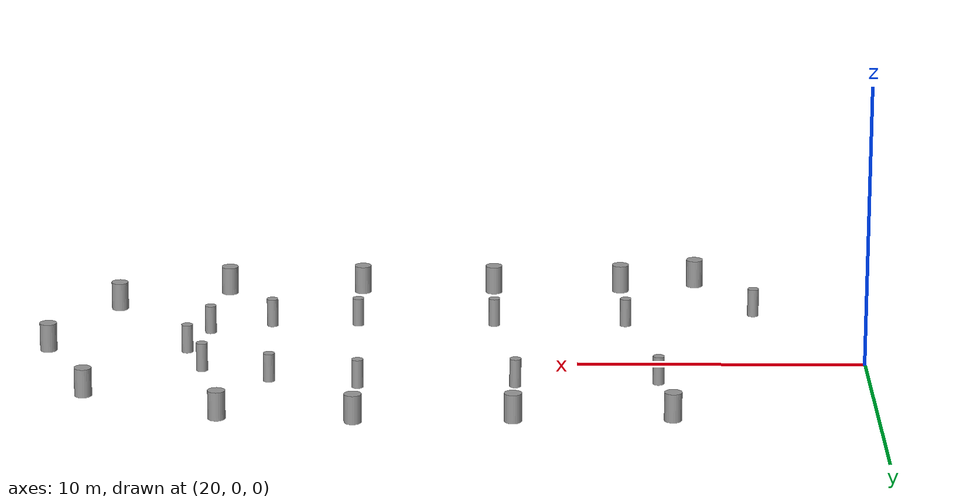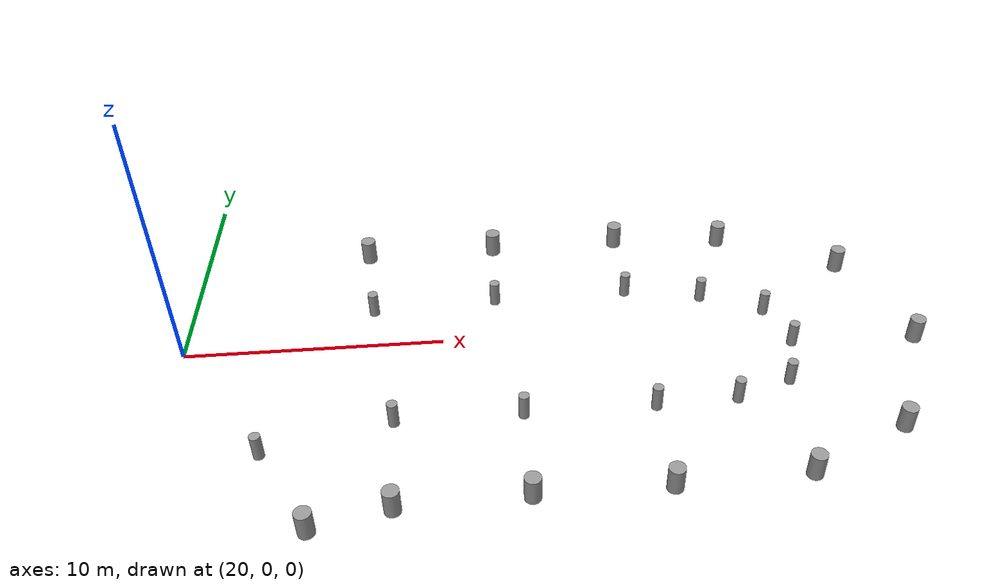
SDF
<sdf version="1.6">
 <world name="default">
  <model name="cylinder_right_clone_0">
   <link name="link_0">
    <inertial>
     <mass>1</mass>
     <inertia><ixx>0.145833</ixx><ixy>0</ixy><ixz>0</ixz><iyy>0.145833</iyy><iyz>0</iyz><izz>0.125</izz></inertia>
    </inertial>
    <visual name="visual">
     <geometry><cylinder><radius>0.2</radius><length>1</length></cylinder></geometry>
     <material>
      <lighting>1</lighting>
      <script><uri>file://media/materials/scripts/gazebo.material</uri><name>Gazebo/Grey</name></script>
      <ambient>0.3 0.3 0.3 1</ambient>
      <diffuse>0.7 0.7 0.7 1</diffuse>
      <specular>0.01 0.01 0.01 1</specular>
      <emissive>0 0 0 1</emissive>
      <shader type="vertex"><normal_map>__default__</normal_map></shader>
     </material>
    </visual>
    <collision name="collision">
     <geometry><cylinder><radius>0.2</radius><length>1</length></cylinder></geometry>
     <surface>
      <friction>
       <ode><mu>1</mu><mu2>1</mu2><fdir1>0 0 0</fdir1><slip1>0</slip1><slip2>0</slip2></ode>
       <torsional>
        <coefficient>1</coefficient>
        <patch_radius>0</patch_radius>
        <surface_radius>0</surface_radius>
        <use_patch_radius>1</use_patch_radius>
        <ode><slip>0</slip></ode>
       </torsional>
      </friction>
      <bounce><restitution_coefficient>0</restitution_coefficient><threshold>1e+06</threshold></bounce>
      <contact>
       <collide_without_contact>0</collide_without_contact>
       <collide_without_contact_bitmask>1</collide_without_contact_bitmask>
       <collide_bitmask>1</collide_bitmask>
       <ode>
        <soft_cfm>0</soft_cfm>
        <soft_erp>0.2</soft_erp>
        <kp>1e+13</kp>
        <kd>1</kd>
        <max_vel>0.01</max_vel>
        <min_depth>0</min_depth>
       </ode>
       <bullet>
        <split_impulse>1</split_impulse>
        <split_impulse_penetration_threshold>-0.01</split_impulse_penetration_threshold>
        <soft_cfm>0</soft_cfm>
        <soft_erp>0.2</soft_erp>
        <kp>1e+13</kp>
        <kd>1</kd>
       </bullet>
      </contact>
     </surface>
    </collision>
   </link>
   <static>0</static>
   <pose>27.2508 1.99321 0.49912 0 -0 0.000407</pose>
  </model>
  <model name="cylinder_left_clone_2">
   <link name="link_1">
    <inertial>
     <mass>1</mass>
     <inertia><ixx>0.145833</ixx><ixy>0</ixy><ixz>0</ixz><iyy>0.145833</iyy><iyz>0</iyz><izz>0.125</izz></inertia>
    </inertial>
    <visual name="visual">
     <geometry><cylinder><radius>0.3</radius><length>1</length></cylinder></geometry>
     <material>
      <lighting>1</lighting>
      <script><uri>file://media/materials/scripts/gazebo.material</uri><name>Gazebo/Grey</name></script>
      <ambient>0.3 0.3 0.3 1</ambient>
      <diffuse>0.7 0.7 0.7 1</diffuse>
      <specular>0.01 0.01 0.01 1</specular>
      <emissive>0 0 0 1</emissive>
      <shader type="vertex"><normal_map>__default__</normal_map></shader>
     </material>
    </visual>
    <collision name="collision">
     <geometry><cylinder><radius>0.3</radius><length>1</length></cylinder></geometry>
     <surface>
      <friction>
       <ode><mu>1</mu><mu2>1</mu2><fdir1>0 0 0</fdir1><slip1>0</slip1><slip2>0</slip2></ode>
       <torsional>
        <coefficient>1</coefficient>
        <patch_radius>0</patch_radius>
        <surface_radius>0</surface_radius>
        <use_patch_radius>1</use_patch_radius>
        <ode><slip>0</slip></ode>
       </torsional>
      </friction>
      <bounce><restitution_coefficient>0</restitution_coefficient><threshold>1e+06</threshold></bounce>
      <contact>
       <collide_without_contact>0</collide_without_contact>
       <collide_without_contact_bitmask>1</collide_without_contact_bitmask>
       <collide_bitmask>1</collide_bitmask>
       <ode>
        <soft_cfm>0</soft_cfm>
        <soft_erp>0.2</soft_erp>
        <kp>1e+13</kp>
        <kd>1</kd>
        <max_vel>0.01</max_vel>
        <min_depth>0</min_depth>
       </ode>
       <bullet>
        <split_impulse>1</split_impulse>
        <split_impulse_penetration_threshold>-0.01</split_impulse_penetration_threshold>
        <soft_cfm>0</soft_cfm>
        <soft_erp>0.2</soft_erp>
        <kp>1e+13</kp>
        <kd>1</kd>
       </bullet>
      </contact>
     </surface>
    </collision>
   </link>
   <static>0</static>
   <pose>32.2673 5.86285 0.49912 0 -0 0</pose>
  </model>
  <model name="cylinder_right_clone_7">
   <link name="link_0">
    <inertial>
     <mass>1</mass>
     <inertia><ixx>0.145833</ixx><ixy>0</ixy><ixz>0</ixz><iyy>0.145833</iyy><iyz>0</iyz><izz>0.125</izz></inertia>
    </inertial>
    <visual name="visual">
     <geometry><cylinder><radius>0.2</radius><length>1</length></cylinder></geometry>
     <material>
      <lighting>1</lighting>
      <script><uri>file://media/materials/scripts/gazebo.material</uri><name>Gazebo/Grey</name></script>
      <ambient>0.3 0.3 0.3 1</ambient>
      <diffuse>0.7 0.7 0.7 1</diffuse>
      <specular>0.01 0.01 0.01 1</specular>
      <emissive>0 0 0 1</emissive>
      <shader type="vertex"><normal_map>__default__</normal_map></shader>
     </material>
    </visual>
    <collision name="collision">
     <geometry><cylinder><radius>0.2</radius><length>1</length></cylinder></geometry>
     <surface>
      <friction>
       <ode><mu>1</mu><mu2>1</mu2><fdir1>0 0 0</fdir1><slip1>0</slip1><slip2>0</slip2></ode>
       <torsional>
        <coefficient>1</coefficient>
        <patch_radius>0</patch_radius>
        <surface_radius>0</surface_radius>
        <use_patch_radius>1</use_patch_radius>
        <ode><slip>0</slip></ode>
       </torsional>
      </friction>
      <bounce><restitution_coefficient>0</restitution_coefficient><threshold>1e+06</threshold></bounce>
      <contact>
       <collide_without_contact>0</collide_without_contact>
       <collide_without_contact_bitmask>1</collide_without_contact_bitmask>
       <collide_bitmask>1</collide_bitmask>
       <ode>
        <soft_cfm>0</soft_cfm>
        <soft_erp>0.2</soft_erp>
        <kp>1e+13</kp>
        <kd>1</kd>
        <max_vel>0.01</max_vel>
        <min_depth>0</min_depth>
       </ode>
       <bullet>
        <split_impulse>1</split_impulse>
        <split_impulse_penetration_threshold>-0.01</split_impulse_penetration_threshold>
        <soft_cfm>0</soft_cfm>
        <soft_erp>0.2</soft_erp>
        <kp>1e+13</kp>
        <kd>1</kd>
       </bullet>
      </contact>
     </surface>
    </collision>
   </link>
   <static>0</static>
   <pose>37.57 2.39361 0.49912 0 -0 0.000406</pose>
  </model>
  <model name="cylinder_right_clone_11">
   <link name="link_0">
    <inertial>
     <mass>1</mass>
     <inertia><ixx>0.145833</ixx><ixy>0</ixy><ixz>0</ixz><iyy>0.145833</iyy><iyz>0</iyz><izz>0.125</izz></inertia>
    </inertial>
    <visual name="visual">
     <geometry><cylinder><radius>0.2</radius><length>1</length></cylinder></geometry>
     <material>
      <lighting>1</lighting>
      <script><uri>file://media/materials/scripts/gazebo.material</uri><name>Gazebo/Grey</name></script>
      <ambient>0.3 0.3 0.3 1</ambient>
      <diffuse>0.7 0.7 0.7 1</diffuse>
      <specular>0.01 0.01 0.01 1</specular>
      <emissive>0 0 0 1</emissive>
      <shader type="vertex"><normal_map>__default__</normal_map></shader>
     </material>
    </visual>
    <collision name="collision">
     <geometry><cylinder><radius>0.2</radius><length>1</length></cylinder></geometry>
     <surface>
      <friction>
       <ode><mu>1</mu><mu2>1</mu2><fdir1>0 0 0</fdir1><slip1>0</slip1><slip2>0</slip2></ode>
       <torsional>
        <coefficient>1</coefficient>
        <patch_radius>0</patch_radius>
        <surface_radius>0</surface_radius>
        <use_patch_radius>1</use_patch_radius>
        <ode><slip>0</slip></ode>
       </torsional>
      </friction>
      <bounce><restitution_coefficient>0</restitution_coefficient><threshold>1e+06</threshold></bounce>
      <contact>
       <collide_without_contact>0</collide_without_contact>
       <collide_without_contact_bitmask>1</collide_without_contact_bitmask>
       <collide_bitmask>1</collide_bitmask>
       <ode>
        <soft_cfm>0</soft_cfm>
        <soft_erp>0.2</soft_erp>
        <kp>1e+13</kp>
        <kd>1</kd>
        <max_vel>0.01</max_vel>
        <min_depth>0</min_depth>
       </ode>
       <bullet>
        <split_impulse>1</split_impulse>
        <split_impulse_penetration_threshold>-0.01</split_impulse_penetration_threshold>
        <soft_cfm>0</soft_cfm>
        <soft_erp>0.2</soft_erp>
        <kp>1e+13</kp>
        <kd>1</kd>
       </bullet>
      </contact>
     </surface>
    </collision>
   </link>
   <static>0</static>
   <pose>32.1657 2.28849 0.49912 0 -0 0.000408</pose>
  </model>
  <model name="cylinder_left_clone_2_clone_clone_0">
   <link name="link_1">
    <inertial>
     <mass>1</mass>
     <inertia><ixx>0.145833</ixx><ixy>0</ixy><ixz>0</ixz><iyy>0.145833</iyy><iyz>0</iyz><izz>0.125</izz></inertia>
    </inertial>
    <visual name="visual">
     <geometry><cylinder><radius>0.3</radius><length>1</length></cylinder></geometry>
     <material>
      <lighting>1</lighting>
      <script><uri>file://media/materials/scripts/gazebo.material</uri><name>Gazebo/Grey</name></script>
      <ambient>0.3 0.3 0.3 1</ambient>
      <diffuse>0.7 0.7 0.7 1</diffuse>
      <specular>0.01 0.01 0.01 1</specular>
      <emissive>0 0 0 1</emissive>
      <shader type="vertex"><normal_map>__default__</normal_map></shader>
     </material>
    </visual>
    <collision name="collision">
     <geometry><cylinder><radius>0.3</radius><length>1</length></cylinder></geometry>
     <surface>
      <friction>
       <ode><mu>1</mu><mu2>1</mu2><fdir1>0 0 0</fdir1><slip1>0</slip1><slip2>0</slip2></ode>
       <torsional>
        <coefficient>1</coefficient>
        <patch_radius>0</patch_radius>
        <surface_radius>0</surface_radius>
        <use_patch_radius>1</use_patch_radius>
        <ode><slip>0</slip></ode>
       </torsional>
      </friction>
      <bounce><restitution_coefficient>0</restitution_coefficient><threshold>1e+06</threshold></bounce>
      <contact>
       <collide_without_contact>0</collide_without_contact>
       <collide_without_contact_bitmask>1</collide_without_contact_bitmask>
       <collide_bitmask>1</collide_bitmask>
       <ode>
        <soft_cfm>0</soft_cfm>
        <soft_erp>0.2</soft_erp>
        <kp>1e+13</kp>
        <kd>1</kd>
        <max_vel>0.01</max_vel>
        <min_depth>0</min_depth>
       </ode>
       <bullet>
        <split_impulse>1</split_impulse>
        <split_impulse_penetration_threshold>-0.01</split_impulse_penetration_threshold>
        <soft_cfm>0</soft_cfm>
        <soft_erp>0.2</soft_erp>
        <kp>1e+13</kp>
        <kd>1</kd>
       </bullet>
      </contact>
     </surface>
    </collision>
   </link>
   <static>0</static>
   <pose>26.9015 5.74729 0.49912 0 -0 0</pose>
  </model>
  <model name="cylinder_left_clone_2_clone_0">
   <link name="link_1">
    <inertial>
     <mass>1</mass>
     <inertia><ixx>0.145833</ixx><ixy>0</ixy><ixz>0</ixz><iyy>0.145833</iyy><iyz>0</iyz><izz>0.125</izz></inertia>
    </inertial>
    <visual name="visual">
     <geometry><cylinder><radius>0.3</radius><length>1</length></cylinder></geometry>
     <material>
      <lighting>1</lighting>
      <script><uri>file://media/materials/scripts/gazebo.material</uri><name>Gazebo/Grey</name></script>
      <ambient>0.3 0.3 0.3 1</ambient>
      <diffuse>0.7 0.7 0.7 1</diffuse>
      <specular>0.01 0.01 0.01 1</specular>
      <emissive>0 0 0 1</emissive>
      <shader type="vertex"><normal_map>__default__</normal_map></shader>
     </material>
    </visual>
    <collision name="collision">
     <geometry><cylinder><radius>0.3</radius><length>1</length></cylinder></geometry>
     <surface>
      <friction>
       <ode><mu>1</mu><mu2>1</mu2><fdir1>0 0 0</fdir1><slip1>0</slip1><slip2>0</slip2></ode>
       <torsional>
        <coefficient>1</coefficient>
        <patch_radius>0</patch_radius>
        <surface_radius>0</surface_radius>
        <use_patch_radius>1</use_patch_radius>
        <ode><slip>0</slip></ode>
       </torsional>
      </friction>
      <bounce><restitution_coefficient>0</restitution_coefficient><threshold>1e+06</threshold></bounce>
      <contact>
       <collide_without_contact>0</collide_without_contact>
       <collide_without_contact_bitmask>1</collide_without_contact_bitmask>
       <collide_bitmask>1</collide_bitmask>
       <ode>
        <soft_cfm>0</soft_cfm>
        <soft_erp>0.2</soft_erp>
        <kp>1e+13</kp>
        <kd>1</kd>
        <max_vel>0.01</max_vel>
        <min_depth>0</min_depth>
       </ode>
       <bullet>
        <split_impulse>1</split_impulse>
        <split_impulse_penetration_threshold>-0.01</split_impulse_penetration_threshold>
        <soft_cfm>0</soft_cfm>
        <soft_erp>0.2</soft_erp>
        <kp>1e+13</kp>
        <kd>1</kd>
       </bullet>
      </contact>
     </surface>
    </collision>
   </link>
   <static>0</static>
   <pose>37.6347 5.98755 0.49912 0 -0 0</pose>
  </model>
  <model name="cylinder_left_clone_2_clone_1">
   <link name="link_1">
    <inertial>
     <mass>1</mass>
     <inertia><ixx>0.145833</ixx><ixy>0</ixy><ixz>0</ixz><iyy>0.145833</iyy><iyz>0</iyz><izz>0.125</izz></inertia>
    </inertial>
    <visual name="visual">
     <geometry><cylinder><radius>0.3</radius><length>1</length></cylinder></geometry>
     <material>
      <lighting>1</lighting>
      <script><uri>file://media/materials/scripts/gazebo.material</uri><name>Gazebo/Grey</name></script>
      <ambient>0.3 0.3 0.3 1</ambient>
      <diffuse>0.7 0.7 0.7 1</diffuse>
      <specular>0.01 0.01 0.01 1</specular>
      <emissive>0 0 0 1</emissive>
      <shader type="vertex"><normal_map>__default__</normal_map></shader>
     </material>
    </visual>
    <collision name="collision">
     <geometry><cylinder><radius>0.3</radius><length>1</length></cylinder></geometry>
     <surface>
      <friction>
       <ode><mu>1</mu><mu2>1</mu2><fdir1>0 0 0</fdir1><slip1>0</slip1><slip2>0</slip2></ode>
       <torsional>
        <coefficient>1</coefficient>
        <patch_radius>0</patch_radius>
        <surface_radius>0</surface_radius>
        <use_patch_radius>1</use_patch_radius>
        <ode><slip>0</slip></ode>
       </torsional>
      </friction>
      <bounce><restitution_coefficient>0</restitution_coefficient><threshold>1e+06</threshold></bounce>
      <contact>
       <collide_without_contact>0</collide_without_contact>
       <collide_without_contact_bitmask>1</collide_without_contact_bitmask>
       <collide_bitmask>1</collide_bitmask>
       <ode>
        <soft_cfm>0</soft_cfm>
        <soft_erp>0.2</soft_erp>
        <kp>1e+13</kp>
        <kd>1</kd>
        <max_vel>0.01</max_vel>
        <min_depth>0</min_depth>
       </ode>
       <bullet>
        <split_impulse>1</split_impulse>
        <split_impulse_penetration_threshold>-0.01</split_impulse_penetration_threshold>
        <soft_cfm>0</soft_cfm>
        <soft_erp>0.2</soft_erp>
        <kp>1e+13</kp>
        <kd>1</kd>
       </bullet>
      </contact>
     </surface>
    </collision>
   </link>
   <static>0</static>
   <pose>46.8917 3.34862 0.49912 0 -0 0</pose>
  </model>
  <model name="cylinder_left_clone_2_clone_2">
   <link name="link_1">
    <inertial>
     <mass>1</mass>
     <inertia><ixx>0.145833</ixx><ixy>0</ixy><ixz>0</ixz><iyy>0.145833</iyy><iyz>0</iyz><izz>0.125</izz></inertia>
    </inertial>
    <visual name="visual">
     <geometry><cylinder><radius>0.3</radius><length>1</length></cylinder></geometry>
     <material>
      <lighting>1</lighting>
      <script><uri>file://media/materials/scripts/gazebo.material</uri><name>Gazebo/Grey</name></script>
      <ambient>0.3 0.3 0.3 1</ambient>
      <diffuse>0.7 0.7 0.7 1</diffuse>
      <specular>0.01 0.01 0.01 1</specular>
      <emissive>0 0 0 1</emissive>
      <shader type="vertex"><normal_map>__default__</normal_map></shader>
     </material>
    </visual>
    <collision name="collision">
     <geometry><cylinder><radius>0.3</radius><length>1</length></cylinder></geometry>
     <surface>
      <friction>
       <ode><mu>1</mu><mu2>1</mu2><fdir1>0 0 0</fdir1><slip1>0</slip1><slip2>0</slip2></ode>
       <torsional>
        <coefficient>1</coefficient>
        <patch_radius>0</patch_radius>
        <surface_radius>0</surface_radius>
        <use_patch_radius>1</use_patch_radius>
        <ode><slip>0</slip></ode>
       </torsional>
      </friction>
      <bounce><restitution_coefficient>0</restitution_coefficient><threshold>1e+06</threshold></bounce>
      <contact>
       <collide_without_contact>0</collide_without_contact>
       <collide_without_contact_bitmask>1</collide_without_contact_bitmask>
       <collide_bitmask>1</collide_bitmask>
       <ode>
        <soft_cfm>0</soft_cfm>
        <soft_erp>0.2</soft_erp>
        <kp>1e+13</kp>
        <kd>1</kd>
        <max_vel>0.01</max_vel>
        <min_depth>0</min_depth>
       </ode>
       <bullet>
        <split_impulse>1</split_impulse>
        <split_impulse_penetration_threshold>-0.01</split_impulse_penetration_threshold>
        <soft_cfm>0</soft_cfm>
        <soft_erp>0.2</soft_erp>
        <kp>1e+13</kp>
        <kd>1</kd>
       </bullet>
      </contact>
     </surface>
    </collision>
   </link>
   <static>0</static>
   <pose>48.5115 -1.47382 0.49912 0 -0 0</pose>
  </model>
  <model name="cylinder_left_clone_2_clone_3">
   <link name="link_1">
    <inertial>
     <mass>1</mass>
     <inertia><ixx>0.145833</ixx><ixy>0</ixy><ixz>0</ixz><iyy>0.145833</iyy><iyz>0</iyz><izz>0.125</izz></inertia>
    </inertial>
    <visual name="visual">
     <geometry><cylinder><radius>0.3</radius><length>1</length></cylinder></geometry>
     <material>
      <lighting>1</lighting>
      <script><uri>file://media/materials/scripts/gazebo.material</uri><name>Gazebo/Grey</name></script>
      <ambient>0.3 0.3 0.3 1</ambient>
      <diffuse>0.7 0.7 0.7 1</diffuse>
      <specular>0.01 0.01 0.01 1</specular>
      <emissive>0 0 0 1</emissive>
      <shader type="vertex"><normal_map>__default__</normal_map></shader>
     </material>
    </visual>
    <collision name="collision">
     <geometry><cylinder><radius>0.3</radius><length>1</length></cylinder></geometry>
     <surface>
      <friction>
       <ode><mu>1</mu><mu2>1</mu2><fdir1>0 0 0</fdir1><slip1>0</slip1><slip2>0</slip2></ode>
       <torsional>
        <coefficient>1</coefficient>
        <patch_radius>0</patch_radius>
        <surface_radius>0</surface_radius>
        <use_patch_radius>1</use_patch_radius>
        <ode><slip>0</slip></ode>
       </torsional>
      </friction>
      <bounce><restitution_coefficient>0</restitution_coefficient><threshold>1e+06</threshold></bounce>
      <contact>
       <collide_without_contact>0</collide_without_contact>
       <collide_without_contact_bitmask>1</collide_without_contact_bitmask>
       <collide_bitmask>1</collide_bitmask>
       <ode>
        <soft_cfm>0</soft_cfm>
        <soft_erp>0.2</soft_erp>
        <kp>1e+13</kp>
        <kd>1</kd>
        <max_vel>0.01</max_vel>
        <min_depth>0</min_depth>
       </ode>
       <bullet>
        <split_impulse>1</split_impulse>
        <split_impulse_penetration_threshold>-0.01</split_impulse_penetration_threshold>
        <soft_cfm>0</soft_cfm>
        <soft_erp>0.2</soft_erp>
        <kp>1e+13</kp>
        <kd>1</kd>
       </bullet>
      </contact>
     </surface>
    </collision>
   </link>
   <static>0</static>
   <pose>42.2131 5.66272 0.49912 0 -0 0</pose>
  </model>
  <model name="cylinder_left_clone_2_clone_4">
   <link name="link_1">
    <inertial>
     <mass>1</mass>
     <inertia><ixx>0.145833</ixx><ixy>0</ixy><ixz>0</ixz><iyy>0.145833</iyy><iyz>0</iyz><izz>0.125</izz></inertia>
    </inertial>
    <visual name="visual">
     <geometry><cylinder><radius>0.3</radius><length>1</length></cylinder></geometry>
     <material>
      <lighting>1</lighting>
      <script><uri>file://media/materials/scripts/gazebo.material</uri><name>Gazebo/Grey</name></script>
      <ambient>0.3 0.3 0.3 1</ambient>
      <diffuse>0.7 0.7 0.7 1</diffuse>
      <specular>0.01 0.01 0.01 1</specular>
      <emissive>0 0 0 1</emissive>
      <shader type="vertex"><normal_map>__default__</normal_map></shader>
     </material>
    </visual>
    <collision name="collision">
     <geometry><cylinder><radius>0.3</radius><length>1</length></cylinder></geometry>
     <surface>
      <friction>
       <ode><mu>1</mu><mu2>1</mu2><fdir1>0 0 0</fdir1><slip1>0</slip1><slip2>0</slip2></ode>
       <torsional>
        <coefficient>1</coefficient>
        <patch_radius>0</patch_radius>
        <surface_radius>0</surface_radius>
        <use_patch_radius>1</use_patch_radius>
        <ode><slip>0</slip></ode>
       </torsional>
      </friction>
      <bounce><restitution_coefficient>0</restitution_coefficient><threshold>1e+06</threshold></bounce>
      <contact>
       <collide_without_contact>0</collide_without_contact>
       <collide_without_contact_bitmask>1</collide_without_contact_bitmask>
       <collide_bitmask>1</collide_bitmask>
       <ode>
        <soft_cfm>0</soft_cfm>
        <soft_erp>0.2</soft_erp>
        <kp>1e+13</kp>
        <kd>1</kd>
        <max_vel>0.01</max_vel>
        <min_depth>0</min_depth>
       </ode>
       <bullet>
        <split_impulse>1</split_impulse>
        <split_impulse_penetration_threshold>-0.01</split_impulse_penetration_threshold>
        <soft_cfm>0</soft_cfm>
        <soft_erp>0.2</soft_erp>
        <kp>1e+13</kp>
        <kd>1</kd>
       </bullet>
      </contact>
     </surface>
    </collision>
   </link>
   <static>0</static>
   <pose>46.3604 -6.17139 0.49912 0 -0 0</pose>
  </model>
  <model name="cylinder_left_clone_2_clone_5">
   <link name="link_1">
    <inertial>
     <mass>1</mass>
     <inertia><ixx>0.145833</ixx><ixy>0</ixy><ixz>0</ixz><iyy>0.145833</iyy><iyz>0</iyz><izz>0.125</izz></inertia>
    </inertial>
    <visual name="visual">
     <geometry><cylinder><radius>0.3</radius><length>1</length></cylinder></geometry>
     <material>
      <lighting>1</lighting>
      <script><uri>file://media/materials/scripts/gazebo.material</uri><name>Gazebo/Grey</name></script>
      <ambient>0.3 0.3 0.3 1</ambient>
      <diffuse>0.7 0.7 0.7 1</diffuse>
      <specular>0.01 0.01 0.01 1</specular>
      <emissive>0 0 0 1</emissive>
      <shader type="vertex"><normal_map>__default__</normal_map></shader>
     </material>
    </visual>
    <collision name="collision">
     <geometry><cylinder><radius>0.3</radius><length>1</length></cylinder></geometry>
     <surface>
      <friction>
       <ode><mu>1</mu><mu2>1</mu2><fdir1>0 0 0</fdir1><slip1>0</slip1><slip2>0</slip2></ode>
       <torsional>
        <coefficient>1</coefficient>
        <patch_radius>0</patch_radius>
        <surface_radius>0</surface_radius>
        <use_patch_radius>1</use_patch_radius>
        <ode><slip>0</slip></ode>
       </torsional>
      </friction>
      <bounce><restitution_coefficient>0</restitution_coefficient><threshold>1e+06</threshold></bounce>
      <contact>
       <collide_without_contact>0</collide_without_contact>
       <collide_without_contact_bitmask>1</collide_without_contact_bitmask>
       <collide_bitmask>1</collide_bitmask>
       <ode>
        <soft_cfm>0</soft_cfm>
        <soft_erp>0.2</soft_erp>
        <kp>1e+13</kp>
        <kd>1</kd>
        <max_vel>0.01</max_vel>
        <min_depth>0</min_depth>
       </ode>
       <bullet>
        <split_impulse>1</split_impulse>
        <split_impulse_penetration_threshold>-0.01</split_impulse_penetration_threshold>
        <soft_cfm>0</soft_cfm>
        <soft_erp>0.2</soft_erp>
        <kp>1e+13</kp>
        <kd>1</kd>
       </bullet>
      </contact>
     </surface>
    </collision>
   </link>
   <static>0</static>
   <pose>42.4942 -8.05609 0.49912 0 -0 0</pose>
  </model>
  <model name="cylinder_left_clone_2_clone_6">
   <link name="link_1">
    <inertial>
     <mass>1</mass>
     <inertia><ixx>0.145833</ixx><ixy>0</ixy><ixz>0</ixz><iyy>0.145833</iyy><iyz>0</iyz><izz>0.125</izz></inertia>
    </inertial>
    <visual name="visual">
     <geometry><cylinder><radius>0.3</radius><length>1</length></cylinder></geometry>
     <material>
      <lighting>1</lighting>
      <script><uri>file://media/materials/scripts/gazebo.material</uri><name>Gazebo/Grey</name></script>
      <ambient>0.3 0.3 0.3 1</ambient>
      <diffuse>0.7 0.7 0.7 1</diffuse>
      <specular>0.01 0.01 0.01 1</specular>
      <emissive>0 0 0 1</emissive>
      <shader type="vertex"><normal_map>__default__</normal_map></shader>
     </material>
    </visual>
    <collision name="collision">
     <geometry><cylinder><radius>0.3</radius><length>1</length></cylinder></geometry>
     <surface>
      <friction>
       <ode><mu>1</mu><mu2>1</mu2><fdir1>0 0 0</fdir1><slip1>0</slip1><slip2>0</slip2></ode>
       <torsional>
        <coefficient>1</coefficient>
        <patch_radius>0</patch_radius>
        <surface_radius>0</surface_radius>
        <use_patch_radius>1</use_patch_radius>
        <ode><slip>0</slip></ode>
       </torsional>
      </friction>
      <bounce><restitution_coefficient>0</restitution_coefficient><threshold>1e+06</threshold></bounce>
      <contact>
       <collide_without_contact>0</collide_without_contact>
       <collide_without_contact_bitmask>1</collide_without_contact_bitmask>
       <collide_bitmask>1</collide_bitmask>
       <ode>
        <soft_cfm>0</soft_cfm>
        <soft_erp>0.2</soft_erp>
        <kp>1e+13</kp>
        <kd>1</kd>
        <max_vel>0.01</max_vel>
        <min_depth>0</min_depth>
       </ode>
       <bullet>
        <split_impulse>1</split_impulse>
        <split_impulse_penetration_threshold>-0.01</split_impulse_penetration_threshold>
        <soft_cfm>0</soft_cfm>
        <soft_erp>0.2</soft_erp>
        <kp>1e+13</kp>
        <kd>1</kd>
       </bullet>
      </contact>
     </surface>
    </collision>
   </link>
   <static>0</static>
   <pose>37.6501 -8.22324 0.49912 0 -0 0</pose>
  </model>
  <model name="cylinder_left_clone_2_clone_7">
   <link name="link_1">
    <inertial>
     <mass>1</mass>
     <inertia><ixx>0.145833</ixx><ixy>0</ixy><ixz>0</ixz><iyy>0.145833</iyy><iyz>0</iyz><izz>0.125</izz></inertia>
    </inertial>
    <visual name="visual">
     <geometry><cylinder><radius>0.3</radius><length>1</length></cylinder></geometry>
     <material>
      <lighting>1</lighting>
      <script><uri>file://media/materials/scripts/gazebo.material</uri><name>Gazebo/Grey</name></script>
      <ambient>0.3 0.3 0.3 1</ambient>
      <diffuse>0.7 0.7 0.7 1</diffuse>
      <specular>0.01 0.01 0.01 1</specular>
      <emissive>0 0 0 1</emissive>
      <shader type="vertex"><normal_map>__default__</normal_map></shader>
     </material>
    </visual>
    <collision name="collision">
     <geometry><cylinder><radius>0.3</radius><length>1</length></cylinder></geometry>
     <surface>
      <friction>
       <ode><mu>1</mu><mu2>1</mu2><fdir1>0 0 0</fdir1><slip1>0</slip1><slip2>0</slip2></ode>
       <torsional>
        <coefficient>1</coefficient>
        <patch_radius>0</patch_radius>
        <surface_radius>0</surface_radius>
        <use_patch_radius>1</use_patch_radius>
        <ode><slip>0</slip></ode>
       </torsional>
      </friction>
      <bounce><restitution_coefficient>0</restitution_coefficient><threshold>1e+06</threshold></bounce>
      <contact>
       <collide_without_contact>0</collide_without_contact>
       <collide_without_contact_bitmask>1</collide_without_contact_bitmask>
       <collide_bitmask>1</collide_bitmask>
       <ode>
        <soft_cfm>0</soft_cfm>
        <soft_erp>0.2</soft_erp>
        <kp>1e+13</kp>
        <kd>1</kd>
        <max_vel>0.01</max_vel>
        <min_depth>0</min_depth>
       </ode>
       <bullet>
        <split_impulse>1</split_impulse>
        <split_impulse_penetration_threshold>-0.01</split_impulse_penetration_threshold>
        <soft_cfm>0</soft_cfm>
        <soft_erp>0.2</soft_erp>
        <kp>1e+13</kp>
        <kd>1</kd>
       </bullet>
      </contact>
     </surface>
    </collision>
   </link>
   <static>0</static>
   <pose>32.8724 -8.22157 0.49912 0 -0 0</pose>
  </model>
  <model name="cylinder_left_clone_2_clone_8">
   <link name="link_1">
    <inertial>
     <mass>1</mass>
     <inertia><ixx>0.145833</ixx><ixy>0</ixy><ixz>0</ixz><iyy>0.145833</iyy><iyz>0</iyz><izz>0.125</izz></inertia>
    </inertial>
    <visual name="visual">
     <geometry><cylinder><radius>0.3</radius><length>1</length></cylinder></geometry>
     <material>
      <lighting>1</lighting>
      <script><uri>file://media/materials/scripts/gazebo.material</uri><name>Gazebo/Grey</name></script>
      <ambient>0.3 0.3 0.3 1</ambient>
      <diffuse>0.7 0.7 0.7 1</diffuse>
      <specular>0.01 0.01 0.01 1</specular>
      <emissive>0 0 0 1</emissive>
      <shader type="vertex"><normal_map>__default__</normal_map></shader>
     </material>
    </visual>
    <collision name="collision">
     <geometry><cylinder><radius>0.3</radius><length>1</length></cylinder></geometry>
     <surface>
      <friction>
       <ode><mu>1</mu><mu2>1</mu2><fdir1>0 0 0</fdir1><slip1>0</slip1><slip2>0</slip2></ode>
       <torsional>
        <coefficient>1</coefficient>
        <patch_radius>0</patch_radius>
        <surface_radius>0</surface_radius>
        <use_patch_radius>1</use_patch_radius>
        <ode><slip>0</slip></ode>
       </torsional>
      </friction>
      <bounce><restitution_coefficient>0</restitution_coefficient><threshold>1e+06</threshold></bounce>
      <contact>
       <collide_without_contact>0</collide_without_contact>
       <collide_without_contact_bitmask>1</collide_without_contact_bitmask>
       <collide_bitmask>1</collide_bitmask>
       <ode>
        <soft_cfm>0</soft_cfm>
        <soft_erp>0.2</soft_erp>
        <kp>1e+13</kp>
        <kd>1</kd>
        <max_vel>0.01</max_vel>
        <min_depth>0</min_depth>
       </ode>
       <bullet>
        <split_impulse>1</split_impulse>
        <split_impulse_penetration_threshold>-0.01</split_impulse_penetration_threshold>
        <soft_cfm>0</soft_cfm>
        <soft_erp>0.2</soft_erp>
        <kp>1e+13</kp>
        <kd>1</kd>
       </bullet>
      </contact>
     </surface>
    </collision>
   </link>
   <static>0</static>
   <pose>28.2593 -8.36783 0.49912 0 -0 0</pose>
  </model>
  <model name="cylinder_left_clone_2_clone_9">
   <link name="link_1">
    <inertial>
     <mass>1</mass>
     <inertia><ixx>0.145833</ixx><ixy>0</ixy><ixz>0</ixz><iyy>0.145833</iyy><iyz>0</iyz><izz>0.125</izz></inertia>
    </inertial>
    <visual name="visual">
     <geometry><cylinder><radius>0.3</radius><length>1</length></cylinder></geometry>
     <material>
      <lighting>1</lighting>
      <script><uri>file://media/materials/scripts/gazebo.material</uri><name>Gazebo/Grey</name></script>
      <ambient>0.3 0.3 0.3 1</ambient>
      <diffuse>0.7 0.7 0.7 1</diffuse>
      <specular>0.01 0.01 0.01 1</specular>
      <emissive>0 0 0 1</emissive>
      <shader type="vertex"><normal_map>__default__</normal_map></shader>
     </material>
    </visual>
    <collision name="collision">
     <geometry><cylinder><radius>0.3</radius><length>1</length></cylinder></geometry>
     <surface>
      <friction>
       <ode><mu>1</mu><mu2>1</mu2><fdir1>0 0 0</fdir1><slip1>0</slip1><slip2>0</slip2></ode>
       <torsional>
        <coefficient>1</coefficient>
        <patch_radius>0</patch_radius>
        <surface_radius>0</surface_radius>
        <use_patch_radius>1</use_patch_radius>
        <ode><slip>0</slip></ode>
       </torsional>
      </friction>
      <bounce><restitution_coefficient>0</restitution_coefficient><threshold>1e+06</threshold></bounce>
      <contact>
       <collide_without_contact>0</collide_without_contact>
       <collide_without_contact_bitmask>1</collide_without_contact_bitmask>
       <collide_bitmask>1</collide_bitmask>
       <ode>
        <soft_cfm>0</soft_cfm>
        <soft_erp>0.2</soft_erp>
        <kp>1e+13</kp>
        <kd>1</kd>
        <max_vel>0.01</max_vel>
        <min_depth>0</min_depth>
       </ode>
       <bullet>
        <split_impulse>1</split_impulse>
        <split_impulse_penetration_threshold>-0.01</split_impulse_penetration_threshold>
        <soft_cfm>0</soft_cfm>
        <soft_erp>0.2</soft_erp>
        <kp>1e+13</kp>
        <kd>1</kd>
       </bullet>
      </contact>
     </surface>
    </collision>
   </link>
   <static>0</static>
   <pose>25.5309 -9.01114 0.49912 0 -0 0</pose>
  </model>
  <model name="cylinder_right_clone_clone_10">
   <link name="link_0">
    <inertial>
     <mass>1</mass>
     <inertia><ixx>0.145833</ixx><ixy>0</ixy><ixz>0</ixz><iyy>0.145833</iyy><iyz>0</iyz><izz>0.125</izz></inertia>
    </inertial>
    <visual name="visual">
     <geometry><cylinder><radius>0.2</radius><length>1</length></cylinder></geometry>
     <material>
      <lighting>1</lighting>
      <script><uri>file://media/materials/scripts/gazebo.material</uri><name>Gazebo/Grey</name></script>
      <ambient>0.3 0.3 0.3 1</ambient>
      <diffuse>0.7 0.7 0.7 1</diffuse>
      <specular>0.01 0.01 0.01 1</specular>
      <emissive>0 0 0 1</emissive>
      <shader type="vertex"><normal_map>__default__</normal_map></shader>
     </material>
    </visual>
    <collision name="collision">
     <geometry><cylinder><radius>0.2</radius><length>1</length></cylinder></geometry>
     <surface>
      <friction>
       <ode><mu>1</mu><mu2>1</mu2><fdir1>0 0 0</fdir1><slip1>0</slip1><slip2>0</slip2></ode>
       <torsional>
        <coefficient>1</coefficient>
        <patch_radius>0</patch_radius>
        <surface_radius>0</surface_radius>
        <use_patch_radius>1</use_patch_radius>
        <ode><slip>0</slip></ode>
       </torsional>
      </friction>
      <bounce><restitution_coefficient>0</restitution_coefficient><threshold>1e+06</threshold></bounce>
      <contact>
       <collide_without_contact>0</collide_without_contact>
       <collide_without_contact_bitmask>1</collide_without_contact_bitmask>
       <collide_bitmask>1</collide_bitmask>
       <ode>
        <soft_cfm>0</soft_cfm>
        <soft_erp>0.2</soft_erp>
        <kp>1e+13</kp>
        <kd>1</kd>
        <max_vel>0.01</max_vel>
        <min_depth>0</min_depth>
       </ode>
       <bullet>
        <split_impulse>1</split_impulse>
        <split_impulse_penetration_threshold>-0.01</split_impulse_penetration_threshold>
        <soft_cfm>0</soft_cfm>
        <soft_erp>0.2</soft_erp>
        <kp>1e+13</kp>
        <kd>1</kd>
       </bullet>
      </contact>
     </surface>
    </collision>
   </link>
   <static>0</static>
   <pose>23.5841 -5.53181 0.49912 0 -0 0.000438</pose>
  </model>
  <model name="cylinder_right_clone_clone_11">
   <link name="link_0">
    <inertial>
     <mass>1</mass>
     <inertia><ixx>0.145833</ixx><ixy>0</ixy><ixz>0</ixz><iyy>0.145833</iyy><iyz>0</iyz><izz>0.125</izz></inertia>
    </inertial>
    <visual name="visual">
     <geometry><cylinder><radius>0.2</radius><length>1</length></cylinder></geometry>
     <material>
      <lighting>1</lighting>
      <script><uri>file://media/materials/scripts/gazebo.material</uri><name>Gazebo/Grey</name></script>
      <ambient>0.3 0.3 0.3 1</ambient>
      <diffuse>0.7 0.7 0.7 1</diffuse>
      <specular>0.01 0.01 0.01 1</specular>
      <emissive>0 0 0 1</emissive>
      <shader type="vertex"><normal_map>__default__</normal_map></shader>
     </material>
    </visual>
    <collision name="collision">
     <geometry><cylinder><radius>0.2</radius><length>1</length></cylinder></geometry>
     <surface>
      <friction>
       <ode><mu>1</mu><mu2>1</mu2><fdir1>0 0 0</fdir1><slip1>0</slip1><slip2>0</slip2></ode>
       <torsional>
        <coefficient>1</coefficient>
        <patch_radius>0</patch_radius>
        <surface_radius>0</surface_radius>
        <use_patch_radius>1</use_patch_radius>
        <ode><slip>0</slip></ode>
       </torsional>
      </friction>
      <bounce><restitution_coefficient>0</restitution_coefficient><threshold>1e+06</threshold></bounce>
      <contact>
       <collide_without_contact>0</collide_without_contact>
       <collide_without_contact_bitmask>1</collide_without_contact_bitmask>
       <collide_bitmask>1</collide_bitmask>
       <ode>
        <soft_cfm>0</soft_cfm>
        <soft_erp>0.2</soft_erp>
        <kp>1e+13</kp>
        <kd>1</kd>
        <max_vel>0.01</max_vel>
        <min_depth>0</min_depth>
       </ode>
       <bullet>
        <split_impulse>1</split_impulse>
        <split_impulse_penetration_threshold>-0.01</split_impulse_penetration_threshold>
        <soft_cfm>0</soft_cfm>
        <soft_erp>0.2</soft_erp>
        <kp>1e+13</kp>
        <kd>1</kd>
       </bullet>
      </contact>
     </surface>
    </collision>
   </link>
   <static>0</static>
   <pose>28.1923 -4.37176 0.49912 0 -0 0.000393</pose>
  </model>
  <model name="cylinder_right_clone_clone_12">
   <link name="link_0">
    <inertial>
     <mass>1</mass>
     <inertia><ixx>0.145833</ixx><ixy>0</ixy><ixz>0</ixz><iyy>0.145833</iyy><iyz>0</iyz><izz>0.125</izz></inertia>
    </inertial>
    <visual name="visual">
     <geometry><cylinder><radius>0.2</radius><length>1</length></cylinder></geometry>
     <material>
      <lighting>1</lighting>
      <script><uri>file://media/materials/scripts/gazebo.material</uri><name>Gazebo/Grey</name></script>
      <ambient>0.3 0.3 0.3 1</ambient>
      <diffuse>0.7 0.7 0.7 1</diffuse>
      <specular>0.01 0.01 0.01 1</specular>
      <emissive>0 0 0 1</emissive>
      <shader type="vertex"><normal_map>__default__</normal_map></shader>
     </material>
    </visual>
    <collision name="collision">
     <geometry><cylinder><radius>0.2</radius><length>1</length></cylinder></geometry>
     <surface>
      <friction>
       <ode><mu>1</mu><mu2>1</mu2><fdir1>0 0 0</fdir1><slip1>0</slip1><slip2>0</slip2></ode>
       <torsional>
        <coefficient>1</coefficient>
        <patch_radius>0</patch_radius>
        <surface_radius>0</surface_radius>
        <use_patch_radius>1</use_patch_radius>
        <ode><slip>0</slip></ode>
       </torsional>
      </friction>
      <bounce><restitution_coefficient>0</restitution_coefficient><threshold>1e+06</threshold></bounce>
      <contact>
       <collide_without_contact>0</collide_without_contact>
       <collide_without_contact_bitmask>1</collide_without_contact_bitmask>
       <collide_bitmask>1</collide_bitmask>
       <ode>
        <soft_cfm>0</soft_cfm>
        <soft_erp>0.2</soft_erp>
        <kp>1e+13</kp>
        <kd>1</kd>
        <max_vel>0.01</max_vel>
        <min_depth>0</min_depth>
       </ode>
       <bullet>
        <split_impulse>1</split_impulse>
        <split_impulse_penetration_threshold>-0.01</split_impulse_penetration_threshold>
        <soft_cfm>0</soft_cfm>
        <soft_erp>0.2</soft_erp>
        <kp>1e+13</kp>
        <kd>1</kd>
       </bullet>
      </contact>
     </surface>
    </collision>
   </link>
   <static>0</static>
   <pose>32.8684 -4.37193 0.49912 0 -0 0.000377</pose>
  </model>
  <model name="cylinder_right_clone_clone_13">
   <link name="link_0">
    <inertial>
     <mass>1</mass>
     <inertia><ixx>0.145833</ixx><ixy>0</ixy><ixz>0</ixz><iyy>0.145833</iyy><iyz>0</iyz><izz>0.125</izz></inertia>
    </inertial>
    <visual name="visual">
     <geometry><cylinder><radius>0.2</radius><length>1</length></cylinder></geometry>
     <material>
      <lighting>1</lighting>
      <script><uri>file://media/materials/scripts/gazebo.material</uri><name>Gazebo/Grey</name></script>
      <ambient>0.3 0.3 0.3 1</ambient>
      <diffuse>0.7 0.7 0.7 1</diffuse>
      <specular>0.01 0.01 0.01 1</specular>
      <emissive>0 0 0 1</emissive>
      <shader type="vertex"><normal_map>__default__</normal_map></shader>
     </material>
    </visual>
    <collision name="collision">
     <geometry><cylinder><radius>0.2</radius><length>1</length></cylinder></geometry>
     <surface>
      <friction>
       <ode><mu>1</mu><mu2>1</mu2><fdir1>0 0 0</fdir1><slip1>0</slip1><slip2>0</slip2></ode>
       <torsional>
        <coefficient>1</coefficient>
        <patch_radius>0</patch_radius>
        <surface_radius>0</surface_radius>
        <use_patch_radius>1</use_patch_radius>
        <ode><slip>0</slip></ode>
       </torsional>
      </friction>
      <bounce><restitution_coefficient>0</restitution_coefficient><threshold>1e+06</threshold></bounce>
      <contact>
       <collide_without_contact>0</collide_without_contact>
       <collide_without_contact_bitmask>1</collide_without_contact_bitmask>
       <collide_bitmask>1</collide_bitmask>
       <ode>
        <soft_cfm>0</soft_cfm>
        <soft_erp>0.2</soft_erp>
        <kp>1e+13</kp>
        <kd>1</kd>
        <max_vel>0.01</max_vel>
        <min_depth>0</min_depth>
       </ode>
       <bullet>
        <split_impulse>1</split_impulse>
        <split_impulse_penetration_threshold>-0.01</split_impulse_penetration_threshold>
        <soft_cfm>0</soft_cfm>
        <soft_erp>0.2</soft_erp>
        <kp>1e+13</kp>
        <kd>1</kd>
       </bullet>
      </contact>
     </surface>
    </collision>
   </link>
   <static>0</static>
   <pose>37.7197 -4.37831 0.49912 0 -0 0.000374</pose>
  </model>
  <model name="cylinder_right_clone_clone_14">
   <link name="link_0">
    <inertial>
     <mass>1</mass>
     <inertia><ixx>0.145833</ixx><ixy>0</ixy><ixz>0</ixz><iyy>0.145833</iyy><iyz>0</iyz><izz>0.125</izz></inertia>
    </inertial>
    <visual name="visual">
     <geometry><cylinder><radius>0.2</radius><length>1</length></cylinder></geometry>
     <material>
      <lighting>1</lighting>
      <script><uri>file://media/materials/scripts/gazebo.material</uri><name>Gazebo/Grey</name></script>
      <ambient>0.3 0.3 0.3 1</ambient>
      <diffuse>0.7 0.7 0.7 1</diffuse>
      <specular>0.01 0.01 0.01 1</specular>
      <emissive>0 0 0 1</emissive>
      <shader type="vertex"><normal_map>__default__</normal_map></shader>
     </material>
    </visual>
    <collision name="collision">
     <geometry><cylinder><radius>0.2</radius><length>1</length></cylinder></geometry>
     <surface>
      <friction>
       <ode><mu>1</mu><mu2>1</mu2><fdir1>0 0 0</fdir1><slip1>0</slip1><slip2>0</slip2></ode>
       <torsional>
        <coefficient>1</coefficient>
        <patch_radius>0</patch_radius>
        <surface_radius>0</surface_radius>
        <use_patch_radius>1</use_patch_radius>
        <ode><slip>0</slip></ode>
       </torsional>
      </friction>
      <bounce><restitution_coefficient>0</restitution_coefficient><threshold>1e+06</threshold></bounce>
      <contact>
       <collide_without_contact>0</collide_without_contact>
       <collide_without_contact_bitmask>1</collide_without_contact_bitmask>
       <collide_bitmask>1</collide_bitmask>
       <ode>
        <soft_cfm>0</soft_cfm>
        <soft_erp>0.2</soft_erp>
        <kp>1e+13</kp>
        <kd>1</kd>
        <max_vel>0.01</max_vel>
        <min_depth>0</min_depth>
       </ode>
       <bullet>
        <split_impulse>1</split_impulse>
        <split_impulse_penetration_threshold>-0.01</split_impulse_penetration_threshold>
        <soft_cfm>0</soft_cfm>
        <soft_erp>0.2</soft_erp>
        <kp>1e+13</kp>
        <kd>1</kd>
       </bullet>
      </contact>
     </surface>
    </collision>
   </link>
   <static>0</static>
   <pose>40.7731 -4.26754 0.501658 -0.008182 0.002722 -0.657411</pose>
  </model>
  <model name="cylinder_right_clone_clone_15">
   <link name="link_0">
    <inertial>
     <mass>1</mass>
     <inertia><ixx>0.145833</ixx><ixy>0</ixy><ixz>0</ixz><iyy>0.145833</iyy><iyz>0</iyz><izz>0.125</izz></inertia>
    </inertial>
    <visual name="visual">
     <geometry><cylinder><radius>0.2</radius><length>1</length></cylinder></geometry>
     <material>
      <lighting>1</lighting>
      <script><uri>file://media/materials/scripts/gazebo.material</uri><name>Gazebo/Grey</name></script>
      <ambient>0.3 0.3 0.3 1</ambient>
      <diffuse>0.7 0.7 0.7 1</diffuse>
      <specular>0.01 0.01 0.01 1</specular>
      <emissive>0 0 0 1</emissive>
      <shader type="vertex"><normal_map>__default__</normal_map></shader>
     </material>
    </visual>
    <collision name="collision">
     <geometry><cylinder><radius>0.2</radius><length>1</length></cylinder></geometry>
     <surface>
      <friction>
       <ode><mu>1</mu><mu2>1</mu2><fdir1>0 0 0</fdir1><slip1>0</slip1><slip2>0</slip2></ode>
       <torsional>
        <coefficient>1</coefficient>
        <patch_radius>0</patch_radius>
        <surface_radius>0</surface_radius>
        <use_patch_radius>1</use_patch_radius>
        <ode><slip>0</slip></ode>
       </torsional>
      </friction>
      <bounce><restitution_coefficient>0</restitution_coefficient><threshold>1e+06</threshold></bounce>
      <contact>
       <collide_without_contact>0</collide_without_contact>
       <collide_without_contact_bitmask>1</collide_without_contact_bitmask>
       <collide_bitmask>1</collide_bitmask>
       <ode>
        <soft_cfm>0</soft_cfm>
        <soft_erp>0.2</soft_erp>
        <kp>1e+13</kp>
        <kd>1</kd>
        <max_vel>0.01</max_vel>
        <min_depth>0</min_depth>
       </ode>
       <bullet>
        <split_impulse>1</split_impulse>
        <split_impulse_penetration_threshold>-0.01</split_impulse_penetration_threshold>
        <soft_cfm>0</soft_cfm>
        <soft_erp>0.2</soft_erp>
        <kp>1e+13</kp>
        <kd>1</kd>
       </bullet>
      </contact>
     </surface>
    </collision>
   </link>
   <static>0</static>
   <pose>42.9339 -3.4775 0.49912 0 -0 0.00041</pose>
  </model>
  <model name="cylinder_right_clone_clone_16">
   <link name="link_0">
    <inertial>
     <mass>1</mass>
     <inertia><ixx>0.145833</ixx><ixy>0</ixy><ixz>0</ixz><iyy>0.145833</iyy><iyz>0</iyz><izz>0.125</izz></inertia>
    </inertial>
    <visual name="visual">
     <geometry><cylinder><radius>0.2</radius><length>1</length></cylinder></geometry>
     <material>
      <lighting>1</lighting>
      <script><uri>file://media/materials/scripts/gazebo.material</uri><name>Gazebo/Grey</name></script>
      <ambient>0.3 0.3 0.3 1</ambient>
      <diffuse>0.7 0.7 0.7 1</diffuse>
      <specular>0.01 0.01 0.01 1</specular>
      <emissive>0 0 0 1</emissive>
      <shader type="vertex"><normal_map>__default__</normal_map></shader>
     </material>
    </visual>
    <collision name="collision">
     <geometry><cylinder><radius>0.2</radius><length>1</length></cylinder></geometry>
     <surface>
      <friction>
       <ode><mu>1</mu><mu2>1</mu2><fdir1>0 0 0</fdir1><slip1>0</slip1><slip2>0</slip2></ode>
       <torsional>
        <coefficient>1</coefficient>
        <patch_radius>0</patch_radius>
        <surface_radius>0</surface_radius>
        <use_patch_radius>1</use_patch_radius>
        <ode><slip>0</slip></ode>
       </torsional>
      </friction>
      <bounce><restitution_coefficient>0</restitution_coefficient><threshold>1e+06</threshold></bounce>
      <contact>
       <collide_without_contact>0</collide_without_contact>
       <collide_without_contact_bitmask>1</collide_without_contact_bitmask>
       <collide_bitmask>1</collide_bitmask>
       <ode>
        <soft_cfm>0</soft_cfm>
        <soft_erp>0.2</soft_erp>
        <kp>1e+13</kp>
        <kd>1</kd>
        <max_vel>0.01</max_vel>
        <min_depth>0</min_depth>
       </ode>
       <bullet>
        <split_impulse>1</split_impulse>
        <split_impulse_penetration_threshold>-0.01</split_impulse_penetration_threshold>
        <soft_cfm>0</soft_cfm>
        <soft_erp>0.2</soft_erp>
        <kp>1e+13</kp>
        <kd>1</kd>
       </bullet>
      </contact>
     </surface>
    </collision>
   </link>
   <static>0</static>
   <pose>40.6268 1.76869 0.49912 0 -0 0.000382</pose>
  </model>
  <model name="cylinder_right_clone_clone_17">
   <link name="link_0">
    <inertial>
     <mass>1</mass>
     <inertia><ixx>0.145833</ixx><ixy>0</ixy><ixz>0</ixz><iyy>0.145833</iyy><iyz>0</iyz><izz>0.125</izz></inertia>
    </inertial>
    <visual name="visual">
     <geometry><cylinder><radius>0.2</radius><length>1</length></cylinder></geometry>
     <material>
      <lighting>1</lighting>
      <script><uri>file://media/materials/scripts/gazebo.material</uri><name>Gazebo/Grey</name></script>
      <ambient>0.3 0.3 0.3 1</ambient>
      <diffuse>0.7 0.7 0.7 1</diffuse>
      <specular>0.01 0.01 0.01 1</specular>
      <emissive>0 0 0 1</emissive>
      <shader type="vertex"><normal_map>__default__</normal_map></shader>
     </material>
    </visual>
    <collision name="collision">
     <geometry><cylinder><radius>0.2</radius><length>1</length></cylinder></geometry>
     <surface>
      <friction>
       <ode><mu>1</mu><mu2>1</mu2><fdir1>0 0 0</fdir1><slip1>0</slip1><slip2>0</slip2></ode>
       <torsional>
        <coefficient>1</coefficient>
        <patch_radius>0</patch_radius>
        <surface_radius>0</surface_radius>
        <use_patch_radius>1</use_patch_radius>
        <ode><slip>0</slip></ode>
       </torsional>
      </friction>
      <bounce><restitution_coefficient>0</restitution_coefficient><threshold>1e+06</threshold></bounce>
      <contact>
       <collide_without_contact>0</collide_without_contact>
       <collide_without_contact_bitmask>1</collide_without_contact_bitmask>
       <collide_bitmask>1</collide_bitmask>
       <ode>
        <soft_cfm>0</soft_cfm>
        <soft_erp>0.2</soft_erp>
        <kp>1e+13</kp>
        <kd>1</kd>
        <max_vel>0.01</max_vel>
        <min_depth>0</min_depth>
       </ode>
       <bullet>
        <split_impulse>1</split_impulse>
        <split_impulse_penetration_threshold>-0.01</split_impulse_penetration_threshold>
        <soft_cfm>0</soft_cfm>
        <soft_erp>0.2</soft_erp>
        <kp>1e+13</kp>
        <kd>1</kd>
       </bullet>
      </contact>
     </surface>
    </collision>
   </link>
   <static>0</static>
   <pose>43.6304 -1.33005 0.49912 0 -0 0.000367</pose>
  </model>
  <model name="cylinder_right_clone_clone_18">
   <link name="link_0">
    <inertial>
     <mass>1</mass>
     <inertia><ixx>0.145833</ixx><ixy>0</ixy><ixz>0</ixz><iyy>0.145833</iyy><iyz>0</iyz><izz>0.125</izz></inertia>
    </inertial>
    <visual name="visual">
     <geometry><cylinder><radius>0.2</radius><length>1</length></cylinder></geometry>
     <material>
      <lighting>1</lighting>
      <script><uri>file://media/materials/scripts/gazebo.material</uri><name>Gazebo/Grey</name></script>
      <ambient>0.3 0.3 0.3 1</ambient>
      <diffuse>0.7 0.7 0.7 1</diffuse>
      <specular>0.01 0.01 0.01 1</specular>
      <emissive>0 0 0 1</emissive>
      <shader type="vertex"><normal_map>__default__</normal_map></shader>
     </material>
    </visual>
    <collision name="collision">
     <geometry><cylinder><radius>0.2</radius><length>1</length></cylinder></geometry>
     <surface>
      <friction>
       <ode><mu>1</mu><mu2>1</mu2><fdir1>0 0 0</fdir1><slip1>0</slip1><slip2>0</slip2></ode>
       <torsional>
        <coefficient>1</coefficient>
        <patch_radius>0</patch_radius>
        <surface_radius>0</surface_radius>
        <use_patch_radius>1</use_patch_radius>
        <ode><slip>0</slip></ode>
       </torsional>
      </friction>
      <bounce><restitution_coefficient>0</restitution_coefficient><threshold>1e+06</threshold></bounce>
      <contact>
       <collide_without_contact>0</collide_without_contact>
       <collide_without_contact_bitmask>1</collide_without_contact_bitmask>
       <collide_bitmask>1</collide_bitmask>
       <ode>
        <soft_cfm>0</soft_cfm>
        <soft_erp>0.2</soft_erp>
        <kp>1e+13</kp>
        <kd>1</kd>
        <max_vel>0.01</max_vel>
        <min_depth>0</min_depth>
       </ode>
       <bullet>
        <split_impulse>1</split_impulse>
        <split_impulse_penetration_threshold>-0.01</split_impulse_penetration_threshold>
        <soft_cfm>0</soft_cfm>
        <soft_erp>0.2</soft_erp>
        <kp>1e+13</kp>
        <kd>1</kd>
       </bullet>
      </contact>
     </surface>
    </collision>
   </link>
   <static>0</static>
   <pose>42.9994 0.666732 0.49912 0 -0 0.000364</pose>
  </model>
 </world>
</sdf>
